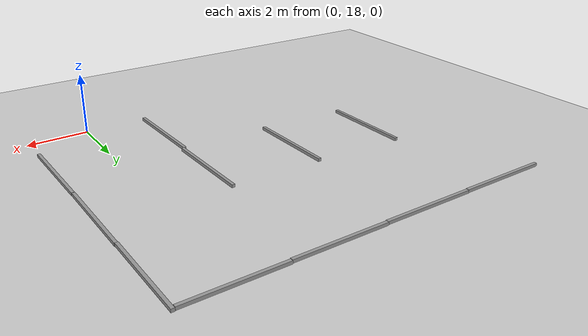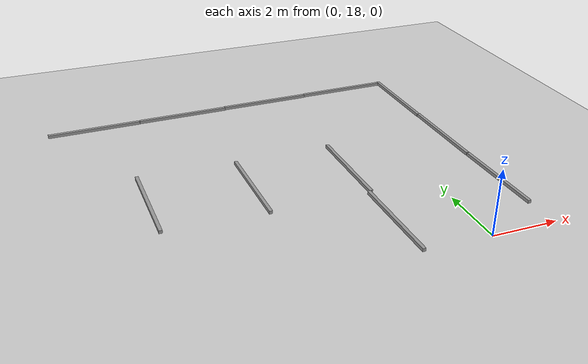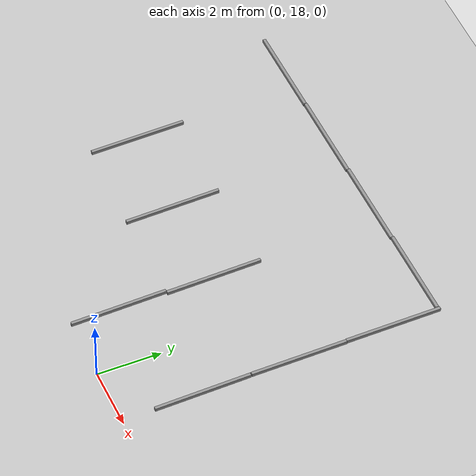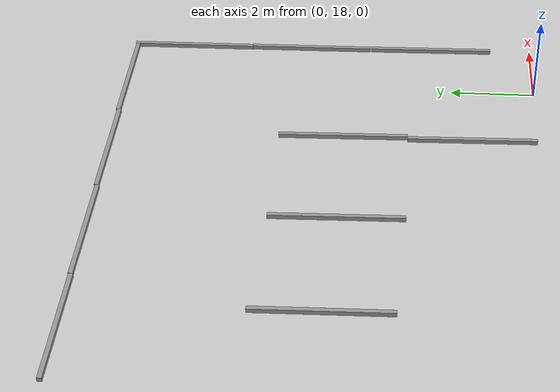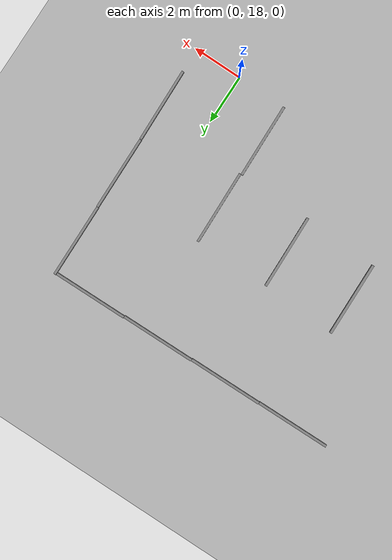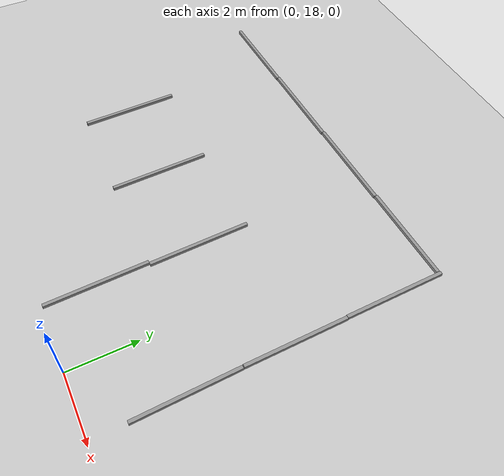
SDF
<sdf version="1.6">
 <world name="default">
  <model name="ground_plane">
   <static>1</static>
   <link name="link">
    <collision name="collision">
     <geometry><plane><normal>0 0 1</normal><size>100 100</size></plane></geometry>
     <surface>
      <contact><collide_bitmask>65535</collide_bitmask></contact>
      <friction><ode><mu>100</mu><mu2>50</mu2></ode></friction>
     </surface>
    </collision>
    <visual name="visual">
     <cast_shadows>0</cast_shadows>
     <geometry><plane><normal>0 0 1</normal><size>100 100</size></plane></geometry>
     <material>
      <script><uri>file://media/materials/scripts/gazebo.material</uri><name>Gazebo/Grey</name></script>
     </material>
    </visual>
   </link>
  </model>
  <model name="ruler_y_clone_clone_clone">
   <link name="link_2">
    <inertial>
     <mass>1</mass>
     <inertia>
      <ixx>0.166667</ixx>
      <ixy>0</ixy>
      <ixz>0</ixz>
      <iyy>0.166667</iyy>
      <iyz>0</iyz>
      <izz>0.166667</izz>
     </inertia>
    </inertial>
    <visual name="visual">
     <geometry><box><size>0.1 3 0.1</size></box></geometry>
     <material>
      <lighting>1</lighting>
      <script><uri>file://media/materials/scripts/gazebo.material</uri><name>Gazebo/Grey</name></script>
      <shader type="vertex"><normal_map>__default__</normal_map></shader>
      <ambient>0.3 0.3 0.3 1</ambient>
      <diffuse>0.7 0.7 0.7 1</diffuse>
      <specular>0.01 0.01 0.01 1</specular>
      <emissive>0 0 0 1</emissive>
     </material>
    </visual>
    <collision name="collision">
     <geometry><box><size>0.1 3 0.1</size></box></geometry>
     <surface>
      <friction>
       <ode><mu>1</mu><mu2>1</mu2><fdir1>0 0 0</fdir1><slip1>0</slip1><slip2>0</slip2></ode>
       <torsional>
        <coefficient>1</coefficient>
        <patch_radius>0</patch_radius>
        <surface_radius>0</surface_radius>
        <use_patch_radius>1</use_patch_radius>
        <ode><slip>0</slip></ode>
       </torsional>
      </friction>
      <bounce><restitution_coefficient>0</restitution_coefficient><threshold>1e+06</threshold></bounce>
      <contact>
       <collide_without_contact>0</collide_without_contact>
       <collide_without_contact_bitmask>1</collide_without_contact_bitmask>
       <collide_bitmask>1</collide_bitmask>
       <ode>
        <soft_cfm>0</soft_cfm>
        <soft_erp>0.2</soft_erp>
        <kp>1e+13</kp>
        <kd>1</kd>
        <max_vel>0.01</max_vel>
        <min_depth>0</min_depth>
       </ode>
       <bullet>
        <split_impulse>1</split_impulse>
        <split_impulse_penetration_threshold>-0.01</split_impulse_penetration_threshold>
        <soft_cfm>0</soft_cfm>
        <soft_erp>0.2</soft_erp>
        <kp>1e+13</kp>
        <kd>1</kd>
       </bullet>
      </contact>
     </surface>
    </collision>
   </link>
   <static>0</static>
   <plugin name="ruler_y" filename="ruler_y"/>
   <pose>-2.05869 19.5258 0.049602 -0.000266 6e-06 0.02639</pose>
  </model>
  <model name="ruler_y_clone_clone_clone_clone">
   <link name="link_2">
    <inertial>
     <mass>1</mass>
     <inertia>
      <ixx>0.166667</ixx>
      <ixy>0</ixy>
      <ixz>0</ixz>
      <iyy>0.166667</iyy>
      <iyz>0</iyz>
      <izz>0.166667</izz>
     </inertia>
    </inertial>
    <visual name="visual">
     <geometry><box><size>0.1 3 0.1</size></box></geometry>
     <material>
      <lighting>1</lighting>
      <script><uri>file://media/materials/scripts/gazebo.material</uri><name>Gazebo/Grey</name></script>
      <shader type="vertex"><normal_map>__default__</normal_map></shader>
      <ambient>0.3 0.3 0.3 1</ambient>
      <diffuse>0.7 0.7 0.7 1</diffuse>
      <specular>0.01 0.01 0.01 1</specular>
      <emissive>0 0 0 1</emissive>
     </material>
    </visual>
    <collision name="collision">
     <geometry><box><size>0.1 3 0.1</size></box></geometry>
     <surface>
      <friction>
       <ode><mu>1</mu><mu2>1</mu2><fdir1>0 0 0</fdir1><slip1>0</slip1><slip2>0</slip2></ode>
       <torsional>
        <coefficient>1</coefficient>
        <patch_radius>0</patch_radius>
        <surface_radius>0</surface_radius>
        <use_patch_radius>1</use_patch_radius>
        <ode><slip>0</slip></ode>
       </torsional>
      </friction>
      <bounce><restitution_coefficient>0</restitution_coefficient><threshold>1e+06</threshold></bounce>
      <contact>
       <collide_without_contact>0</collide_without_contact>
       <collide_without_contact_bitmask>1</collide_without_contact_bitmask>
       <collide_bitmask>1</collide_bitmask>
       <ode>
        <soft_cfm>0</soft_cfm>
        <soft_erp>0.2</soft_erp>
        <kp>1e+13</kp>
        <kd>1</kd>
        <max_vel>0.01</max_vel>
        <min_depth>0</min_depth>
       </ode>
       <bullet>
        <split_impulse>1</split_impulse>
        <split_impulse_penetration_threshold>-0.01</split_impulse_penetration_threshold>
        <soft_cfm>0</soft_cfm>
        <soft_erp>0.2</soft_erp>
        <kp>1e+13</kp>
        <kd>1</kd>
       </bullet>
      </contact>
     </surface>
    </collision>
   </link>
   <static>0</static>
   <plugin name="ruler_y" filename="ruler_y"/>
   <pose>-2.06494 22.5275 0.049602 -0.000266 6e-06 0.026388</pose>
  </model>
  <model name="ruler_y_clone_0_clone_clone_clone_clone">
   <link name="link_2">
    <inertial>
     <mass>1</mass>
     <inertia>
      <ixx>0.166667</ixx>
      <ixy>0</ixy>
      <ixz>0</ixz>
      <iyy>0.166667</iyy>
      <iyz>0</iyz>
      <izz>0.166667</izz>
     </inertia>
    </inertial>
    <visual name="visual">
     <geometry><box><size>0.1 3 0.1</size></box></geometry>
     <material>
      <lighting>1</lighting>
      <script><uri>file://media/materials/scripts/gazebo.material</uri><name>Gazebo/Grey</name></script>
      <shader type="vertex"><normal_map>__default__</normal_map></shader>
      <ambient>0.3 0.3 0.3 1</ambient>
      <diffuse>0.7 0.7 0.7 1</diffuse>
      <specular>0.01 0.01 0.01 1</specular>
      <emissive>0 0 0 1</emissive>
     </material>
    </visual>
    <collision name="collision">
     <geometry><box><size>0.1 3 0.1</size></box></geometry>
     <surface>
      <friction>
       <ode><mu>1</mu><mu2>1</mu2><fdir1>0 0 0</fdir1><slip1>0</slip1><slip2>0</slip2></ode>
       <torsional>
        <coefficient>1</coefficient>
        <patch_radius>0</patch_radius>
        <surface_radius>0</surface_radius>
        <use_patch_radius>1</use_patch_radius>
        <ode><slip>0</slip></ode>
       </torsional>
      </friction>
      <bounce><restitution_coefficient>0</restitution_coefficient><threshold>1e+06</threshold></bounce>
      <contact>
       <collide_without_contact>0</collide_without_contact>
       <collide_without_contact_bitmask>1</collide_without_contact_bitmask>
       <collide_bitmask>1</collide_bitmask>
       <ode>
        <soft_cfm>0</soft_cfm>
        <soft_erp>0.2</soft_erp>
        <kp>1e+13</kp>
        <kd>1</kd>
        <max_vel>0.01</max_vel>
        <min_depth>0</min_depth>
       </ode>
       <bullet>
        <split_impulse>1</split_impulse>
        <split_impulse_penetration_threshold>-0.01</split_impulse_penetration_threshold>
        <soft_cfm>0</soft_cfm>
        <soft_erp>0.2</soft_erp>
        <kp>1e+13</kp>
        <kd>1</kd>
       </bullet>
      </contact>
     </surface>
    </collision>
   </link>
   <static>0</static>
   <plugin name="ruler_y" filename="ruler_y"/>
   <pose>-5.11291 22.5117 0.049602 0.000266 -6e-06 0.026104</pose>
  </model>
  <model name="ruler_y_clone_0_clone_0_clone_clone_clone_clone">
   <link name="link_2">
    <inertial>
     <mass>1</mass>
     <inertia>
      <ixx>0.166667</ixx>
      <ixy>0</ixy>
      <ixz>0</ixz>
      <iyy>0.166667</iyy>
      <iyz>0</iyz>
      <izz>0.166667</izz>
     </inertia>
    </inertial>
    <visual name="visual">
     <geometry><box><size>0.1 3 0.1</size></box></geometry>
     <material>
      <lighting>1</lighting>
      <script><uri>file://media/materials/scripts/gazebo.material</uri><name>Gazebo/Grey</name></script>
      <shader type="vertex"><normal_map>__default__</normal_map></shader>
      <ambient>0.3 0.3 0.3 1</ambient>
      <diffuse>0.7 0.7 0.7 1</diffuse>
      <specular>0.01 0.01 0.01 1</specular>
      <emissive>0 0 0 1</emissive>
     </material>
    </visual>
    <collision name="collision">
     <geometry><box><size>0.1 3 0.1</size></box></geometry>
     <surface>
      <friction>
       <ode><mu>1</mu><mu2>1</mu2><fdir1>0 0 0</fdir1><slip1>0</slip1><slip2>0</slip2></ode>
       <torsional>
        <coefficient>1</coefficient>
        <patch_radius>0</patch_radius>
        <surface_radius>0</surface_radius>
        <use_patch_radius>1</use_patch_radius>
        <ode><slip>0</slip></ode>
       </torsional>
      </friction>
      <bounce><restitution_coefficient>0</restitution_coefficient><threshold>1e+06</threshold></bounce>
      <contact>
       <collide_without_contact>0</collide_without_contact>
       <collide_without_contact_bitmask>1</collide_without_contact_bitmask>
       <collide_bitmask>1</collide_bitmask>
       <ode>
        <soft_cfm>0</soft_cfm>
        <soft_erp>0.2</soft_erp>
        <kp>1e+13</kp>
        <kd>1</kd>
        <max_vel>0.01</max_vel>
        <min_depth>0</min_depth>
       </ode>
       <bullet>
        <split_impulse>1</split_impulse>
        <split_impulse_penetration_threshold>-0.01</split_impulse_penetration_threshold>
        <soft_cfm>0</soft_cfm>
        <soft_erp>0.2</soft_erp>
        <kp>1e+13</kp>
        <kd>1</kd>
       </bullet>
      </contact>
     </surface>
    </collision>
   </link>
   <static>0</static>
   <plugin name="ruler_y" filename="ruler_y"/>
   <pose>-8.1349 22.6445 0.049602 0.000266 -6e-06 0.02147</pose>
  </model>
  <model name="ruler_y_clone_1_clone_clone_clone_0_clone">
   <link name="link_2">
    <inertial>
     <mass>1</mass>
     <inertia>
      <ixx>0.166667</ixx>
      <ixy>0</ixy>
      <ixz>0</ixz>
      <iyy>0.166667</iyy>
      <iyz>0</iyz>
      <izz>0.166667</izz>
     </inertia>
    </inertial>
    <visual name="visual">
     <geometry><box><size>0.1 3 0.1</size></box></geometry>
     <material>
      <lighting>1</lighting>
      <script><uri>file://media/materials/scripts/gazebo.material</uri><name>Gazebo/Grey</name></script>
      <shader type="vertex"><normal_map>__default__</normal_map></shader>
      <ambient>0.3 0.3 0.3 1</ambient>
      <diffuse>0.7 0.7 0.7 1</diffuse>
      <specular>0.01 0.01 0.01 1</specular>
      <emissive>0 0 0 1</emissive>
     </material>
    </visual>
    <collision name="collision">
     <geometry><box><size>0.1 3 0.1</size></box></geometry>
     <surface>
      <friction>
       <ode><mu>1</mu><mu2>1</mu2><fdir1>0 0 0</fdir1><slip1>0</slip1><slip2>0</slip2></ode>
       <torsional>
        <coefficient>1</coefficient>
        <patch_radius>0</patch_radius>
        <surface_radius>0</surface_radius>
        <use_patch_radius>1</use_patch_radius>
        <ode><slip>0</slip></ode>
       </torsional>
      </friction>
      <bounce><restitution_coefficient>0</restitution_coefficient><threshold>1e+06</threshold></bounce>
      <contact>
       <collide_without_contact>0</collide_without_contact>
       <collide_without_contact_bitmask>1</collide_without_contact_bitmask>
       <collide_bitmask>1</collide_bitmask>
       <ode>
        <soft_cfm>0</soft_cfm>
        <soft_erp>0.2</soft_erp>
        <kp>1e+13</kp>
        <kd>1</kd>
        <max_vel>0.01</max_vel>
        <min_depth>0</min_depth>
       </ode>
       <bullet>
        <split_impulse>1</split_impulse>
        <split_impulse_penetration_threshold>-0.01</split_impulse_penetration_threshold>
        <soft_cfm>0</soft_cfm>
        <soft_erp>0.2</soft_erp>
        <kp>1e+13</kp>
        <kd>1</kd>
       </bullet>
      </contact>
     </surface>
    </collision>
   </link>
   <static>0</static>
   <plugin name="ruler_y" filename="ruler_y"/>
   <pose>1.85307 20.5 0.049602 0.000266 -6e-06 0.024779</pose>
  </model>
  <model name="ruler_y_clone_1_clone_clone_clone_0_clone_clone">
   <link name="link_2">
    <inertial>
     <mass>1</mass>
     <inertia>
      <ixx>0.166667</ixx>
      <ixy>0</ixy>
      <ixz>0</ixz>
      <iyy>0.166667</iyy>
      <iyz>0</iyz>
      <izz>0.166667</izz>
     </inertia>
    </inertial>
    <visual name="visual">
     <geometry><box><size>0.1 3 0.1</size></box></geometry>
     <material>
      <lighting>1</lighting>
      <script><uri>file://media/materials/scripts/gazebo.material</uri><name>Gazebo/Grey</name></script>
      <shader type="vertex"><normal_map>__default__</normal_map></shader>
      <ambient>0.3 0.3 0.3 1</ambient>
      <diffuse>0.7 0.7 0.7 1</diffuse>
      <specular>0.01 0.01 0.01 1</specular>
      <emissive>0 0 0 1</emissive>
     </material>
    </visual>
    <collision name="collision">
     <geometry><box><size>0.1 3 0.1</size></box></geometry>
     <surface>
      <friction>
       <ode><mu>1</mu><mu2>1</mu2><fdir1>0 0 0</fdir1><slip1>0</slip1><slip2>0</slip2></ode>
       <torsional>
        <coefficient>1</coefficient>
        <patch_radius>0</patch_radius>
        <surface_radius>0</surface_radius>
        <use_patch_radius>1</use_patch_radius>
        <ode><slip>0</slip></ode>
       </torsional>
      </friction>
      <bounce><restitution_coefficient>0</restitution_coefficient><threshold>1e+06</threshold></bounce>
      <contact>
       <collide_without_contact>0</collide_without_contact>
       <collide_without_contact_bitmask>1</collide_without_contact_bitmask>
       <collide_bitmask>1</collide_bitmask>
       <ode>
        <soft_cfm>0</soft_cfm>
        <soft_erp>0.2</soft_erp>
        <kp>1e+13</kp>
        <kd>1</kd>
        <max_vel>0.01</max_vel>
        <min_depth>0</min_depth>
       </ode>
       <bullet>
        <split_impulse>1</split_impulse>
        <split_impulse_penetration_threshold>-0.01</split_impulse_penetration_threshold>
        <soft_cfm>0</soft_cfm>
        <soft_erp>0.2</soft_erp>
        <kp>1e+13</kp>
        <kd>1</kd>
       </bullet>
      </contact>
     </surface>
    </collision>
   </link>
   <static>0</static>
   <plugin name="ruler_y" filename="ruler_y"/>
   <pose>1.78742 23.5229 0.049602 -0.000266 -6e-06 0.014255</pose>
  </model>
  <model name="ruler_y_clone_1_clone_clone_clone_0_clone_clone_clone">
   <link name="link_2">
    <inertial>
     <mass>1</mass>
     <inertia>
      <ixx>0.166667</ixx>
      <ixy>0</ixy>
      <ixz>0</ixz>
      <iyy>0.166667</iyy>
      <iyz>0</iyz>
      <izz>0.166667</izz>
     </inertia>
    </inertial>
    <visual name="visual">
     <geometry><box><size>0.1 3 0.1</size></box></geometry>
     <material>
      <lighting>1</lighting>
      <script><uri>file://media/materials/scripts/gazebo.material</uri><name>Gazebo/Grey</name></script>
      <shader type="vertex"><normal_map>__default__</normal_map></shader>
      <ambient>0.3 0.3 0.3 1</ambient>
      <diffuse>0.7 0.7 0.7 1</diffuse>
      <specular>0.01 0.01 0.01 1</specular>
      <emissive>0 0 0 1</emissive>
     </material>
    </visual>
    <collision name="collision">
     <geometry><box><size>0.1 3 0.1</size></box></geometry>
     <surface>
      <friction>
       <ode><mu>1</mu><mu2>1</mu2><fdir1>0 0 0</fdir1><slip1>0</slip1><slip2>0</slip2></ode>
       <torsional>
        <coefficient>1</coefficient>
        <patch_radius>0</patch_radius>
        <surface_radius>0</surface_radius>
        <use_patch_radius>1</use_patch_radius>
        <ode><slip>0</slip></ode>
       </torsional>
      </friction>
      <bounce><restitution_coefficient>0</restitution_coefficient><threshold>1e+06</threshold></bounce>
      <contact>
       <collide_without_contact>0</collide_without_contact>
       <collide_without_contact_bitmask>1</collide_without_contact_bitmask>
       <collide_bitmask>1</collide_bitmask>
       <ode>
        <soft_cfm>0</soft_cfm>
        <soft_erp>0.2</soft_erp>
        <kp>1e+13</kp>
        <kd>1</kd>
        <max_vel>0.01</max_vel>
        <min_depth>0</min_depth>
       </ode>
       <bullet>
        <split_impulse>1</split_impulse>
        <split_impulse_penetration_threshold>-0.01</split_impulse_penetration_threshold>
        <soft_cfm>0</soft_cfm>
        <soft_erp>0.2</soft_erp>
        <kp>1e+13</kp>
        <kd>1</kd>
       </bullet>
      </contact>
     </surface>
    </collision>
   </link>
   <static>0</static>
   <plugin name="ruler_y" filename="ruler_y"/>
   <pose>1.73198 26.5234 0.049602 -0.000266 -6e-06 0.012969</pose>
  </model>
  <model name="ruler_clone_clone_clone_clone_clone">
   <link name="link_1">
    <inertial>
     <mass>1</mass>
     <inertia>
      <ixx>0.166667</ixx>
      <ixy>0</ixy>
      <ixz>0</ixz>
      <iyy>0.166667</iyy>
      <iyz>0</iyz>
      <izz>0.166667</izz>
     </inertia>
    </inertial>
    <visual name="visual">
     <geometry><box><size>3 0.1 0.1</size></box></geometry>
     <material>
      <lighting>1</lighting>
      <script><uri>file://media/materials/scripts/gazebo.material</uri><name>Gazebo/Grey</name></script>
      <shader type="vertex"><normal_map>__default__</normal_map></shader>
      <ambient>0.3 0.3 0.3 1</ambient>
      <diffuse>0.7 0.7 0.7 1</diffuse>
      <specular>0.01 0.01 0.01 1</specular>
      <emissive>0 0 0 1</emissive>
     </material>
    </visual>
    <collision name="collision">
     <geometry><box><size>3 0.1 0.1</size></box></geometry>
     <surface>
      <friction>
       <ode><mu>1</mu><mu2>1</mu2><fdir1>0 0 0</fdir1><slip1>0</slip1><slip2>0</slip2></ode>
       <torsional>
        <coefficient>1</coefficient>
        <patch_radius>0</patch_radius>
        <surface_radius>0</surface_radius>
        <use_patch_radius>1</use_patch_radius>
        <ode><slip>0</slip></ode>
       </torsional>
      </friction>
      <bounce><restitution_coefficient>0</restitution_coefficient><threshold>1e+06</threshold></bounce>
      <contact>
       <collide_without_contact>0</collide_without_contact>
       <collide_without_contact_bitmask>1</collide_without_contact_bitmask>
       <collide_bitmask>1</collide_bitmask>
       <ode>
        <soft_cfm>0</soft_cfm>
        <soft_erp>0.2</soft_erp>
        <kp>1e+13</kp>
        <kd>1</kd>
        <max_vel>0.01</max_vel>
        <min_depth>0</min_depth>
       </ode>
       <bullet>
        <split_impulse>1</split_impulse>
        <split_impulse_penetration_threshold>-0.01</split_impulse_penetration_threshold>
        <soft_cfm>0</soft_cfm>
        <soft_erp>0.2</soft_erp>
        <kp>1e+13</kp>
        <kd>1</kd>
       </bullet>
      </contact>
     </surface>
    </collision>
   </link>
   <static>0</static>
   <pose>0.150989 27.9459 0.049602 6e-06 -0.000266 0.008703</pose>
  </model>
  <model name="ruler_clone_clone_clone_clone_clone_0">
   <link name="link_1">
    <inertial>
     <mass>1</mass>
     <inertia>
      <ixx>0.166667</ixx>
      <ixy>0</ixy>
      <ixz>0</ixz>
      <iyy>0.166667</iyy>
      <iyz>0</iyz>
      <izz>0.166667</izz>
     </inertia>
    </inertial>
    <visual name="visual">
     <geometry><box><size>3 0.1 0.1</size></box></geometry>
     <material>
      <lighting>1</lighting>
      <script><uri>file://media/materials/scripts/gazebo.material</uri><name>Gazebo/Grey</name></script>
      <shader type="vertex"><normal_map>__default__</normal_map></shader>
      <ambient>0.3 0.3 0.3 1</ambient>
      <diffuse>0.7 0.7 0.7 1</diffuse>
      <specular>0.01 0.01 0.01 1</specular>
      <emissive>0 0 0 1</emissive>
     </material>
    </visual>
    <collision name="collision">
     <geometry><box><size>3 0.1 0.1</size></box></geometry>
     <surface>
      <friction>
       <ode><mu>1</mu><mu2>1</mu2><fdir1>0 0 0</fdir1><slip1>0</slip1><slip2>0</slip2></ode>
       <torsional>
        <coefficient>1</coefficient>
        <patch_radius>0</patch_radius>
        <surface_radius>0</surface_radius>
        <use_patch_radius>1</use_patch_radius>
        <ode><slip>0</slip></ode>
       </torsional>
      </friction>
      <bounce><restitution_coefficient>0</restitution_coefficient><threshold>1e+06</threshold></bounce>
      <contact>
       <collide_without_contact>0</collide_without_contact>
       <collide_without_contact_bitmask>1</collide_without_contact_bitmask>
       <collide_bitmask>1</collide_bitmask>
       <ode>
        <soft_cfm>0</soft_cfm>
        <soft_erp>0.2</soft_erp>
        <kp>1e+13</kp>
        <kd>1</kd>
        <max_vel>0.01</max_vel>
        <min_depth>0</min_depth>
       </ode>
       <bullet>
        <split_impulse>1</split_impulse>
        <split_impulse_penetration_threshold>-0.01</split_impulse_penetration_threshold>
        <soft_cfm>0</soft_cfm>
        <soft_erp>0.2</soft_erp>
        <kp>1e+13</kp>
        <kd>1</kd>
       </bullet>
      </contact>
     </surface>
    </collision>
   </link>
   <static>0</static>
   <pose>-2.85658 27.8952 0.049602 -6e-06 0.000266 0.008814</pose>
  </model>
  <model name="ruler_clone_clone_clone_clone_clone_0_clone">
   <link name="link_1">
    <inertial>
     <mass>1</mass>
     <inertia>
      <ixx>0.166667</ixx>
      <ixy>0</ixy>
      <ixz>0</ixz>
      <iyy>0.166667</iyy>
      <iyz>0</iyz>
      <izz>0.166667</izz>
     </inertia>
    </inertial>
    <visual name="visual">
     <geometry><box><size>3 0.1 0.1</size></box></geometry>
     <material>
      <lighting>1</lighting>
      <script><uri>file://media/materials/scripts/gazebo.material</uri><name>Gazebo/Grey</name></script>
      <shader type="vertex"><normal_map>__default__</normal_map></shader>
      <ambient>0.3 0.3 0.3 1</ambient>
      <diffuse>0.7 0.7 0.7 1</diffuse>
      <specular>0.01 0.01 0.01 1</specular>
      <emissive>0 0 0 1</emissive>
     </material>
    </visual>
    <collision name="collision">
     <geometry><box><size>3 0.1 0.1</size></box></geometry>
     <surface>
      <friction>
       <ode><mu>1</mu><mu2>1</mu2><fdir1>0 0 0</fdir1><slip1>0</slip1><slip2>0</slip2></ode>
       <torsional>
        <coefficient>1</coefficient>
        <patch_radius>0</patch_radius>
        <surface_radius>0</surface_radius>
        <use_patch_radius>1</use_patch_radius>
        <ode><slip>0</slip></ode>
       </torsional>
      </friction>
      <bounce><restitution_coefficient>0</restitution_coefficient><threshold>1e+06</threshold></bounce>
      <contact>
       <collide_without_contact>0</collide_without_contact>
       <collide_without_contact_bitmask>1</collide_without_contact_bitmask>
       <collide_bitmask>1</collide_bitmask>
       <ode>
        <soft_cfm>0</soft_cfm>
        <soft_erp>0.2</soft_erp>
        <kp>1e+13</kp>
        <kd>1</kd>
        <max_vel>0.01</max_vel>
        <min_depth>0</min_depth>
       </ode>
       <bullet>
        <split_impulse>1</split_impulse>
        <split_impulse_penetration_threshold>-0.01</split_impulse_penetration_threshold>
        <soft_cfm>0</soft_cfm>
        <soft_erp>0.2</soft_erp>
        <kp>1e+13</kp>
        <kd>1</kd>
       </bullet>
      </contact>
     </surface>
    </collision>
   </link>
   <static>0</static>
   <pose>-5.86151 27.8463 0.049602 6e-06 -0.000266 0.008814</pose>
  </model>
  <model name="ruler_clone_clone_clone_clone_clone_0_clone_clone">
   <link name="link_1">
    <inertial>
     <mass>1</mass>
     <inertia>
      <ixx>0.166667</ixx>
      <ixy>0</ixy>
      <ixz>0</ixz>
      <iyy>0.166667</iyy>
      <iyz>0</iyz>
      <izz>0.166667</izz>
     </inertia>
    </inertial>
    <visual name="visual">
     <geometry><box><size>3 0.1 0.1</size></box></geometry>
     <material>
      <lighting>1</lighting>
      <script><uri>file://media/materials/scripts/gazebo.material</uri><name>Gazebo/Grey</name></script>
      <shader type="vertex"><normal_map>__default__</normal_map></shader>
      <ambient>0.3 0.3 0.3 1</ambient>
      <diffuse>0.7 0.7 0.7 1</diffuse>
      <specular>0.01 0.01 0.01 1</specular>
      <emissive>0 0 0 1</emissive>
     </material>
    </visual>
    <collision name="collision">
     <geometry><box><size>3 0.1 0.1</size></box></geometry>
     <surface>
      <friction>
       <ode><mu>1</mu><mu2>1</mu2><fdir1>0 0 0</fdir1><slip1>0</slip1><slip2>0</slip2></ode>
       <torsional>
        <coefficient>1</coefficient>
        <patch_radius>0</patch_radius>
        <surface_radius>0</surface_radius>
        <use_patch_radius>1</use_patch_radius>
        <ode><slip>0</slip></ode>
       </torsional>
      </friction>
      <bounce><restitution_coefficient>0</restitution_coefficient><threshold>1e+06</threshold></bounce>
      <contact>
       <collide_without_contact>0</collide_without_contact>
       <collide_without_contact_bitmask>1</collide_without_contact_bitmask>
       <collide_bitmask>1</collide_bitmask>
       <ode>
        <soft_cfm>0</soft_cfm>
        <soft_erp>0.2</soft_erp>
        <kp>1e+13</kp>
        <kd>1</kd>
        <max_vel>0.01</max_vel>
        <min_depth>0</min_depth>
       </ode>
       <bullet>
        <split_impulse>1</split_impulse>
        <split_impulse_penetration_threshold>-0.01</split_impulse_penetration_threshold>
        <soft_cfm>0</soft_cfm>
        <soft_erp>0.2</soft_erp>
        <kp>1e+13</kp>
        <kd>1</kd>
       </bullet>
      </contact>
     </surface>
    </collision>
   </link>
   <static>0</static>
   <pose>-8.87288 27.8048 0.049602 6e-06 -0.000266 0.008815</pose>
  </model>
 </world>
</sdf>
